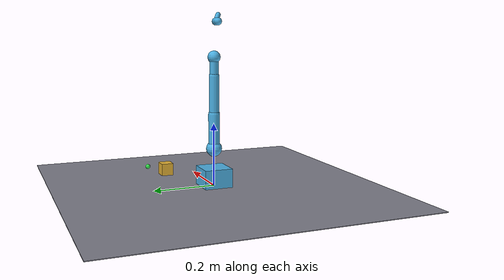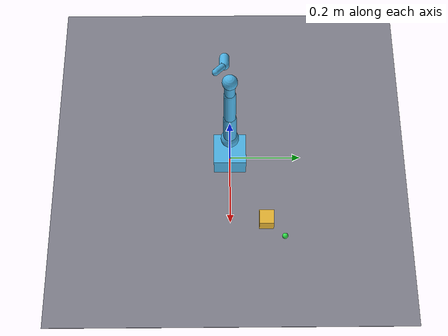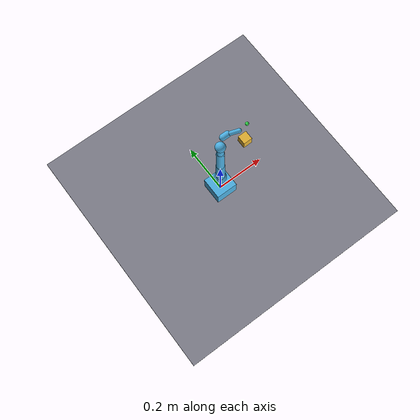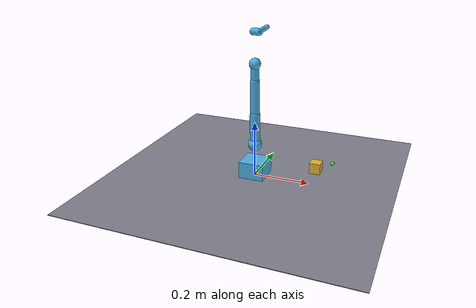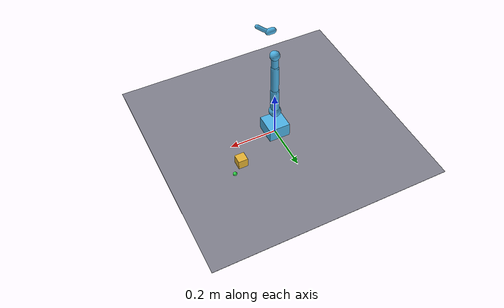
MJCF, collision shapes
<mujoco model="genkiarm_calibrated_push">
  <compiler angle="radian" meshdir="genkiarm/meshes" autolimits="true"/>
  <option gravity="0 0 -9.81" timestep="0.005" integrator="implicitfast"/>

  <asset>
    <mesh name="cad_base" file="AA.stl" scale="0.001 0.001 0.001"/>
    <mesh name="cad_j1" file="BB.stl" scale="0.001 0.001 0.001"/>
    <mesh name="cad_j2" file="CC.stl" scale="0.001 0.001 0.001"/>
    <mesh name="cad_j3" file="DD.stl" scale="0.001 0.001 0.001"/>
    <mesh name="cad_j4" file="EE.stl" scale="0.001 0.001 0.001"/>
    <mesh name="cad_j5" file="FF.stl" scale="0.001 0.001 0.001"/>
    <mesh name="cad_tool" file="GG.stl" scale="0.001 0.001 0.001"/>
  </asset>

  <default>
    <joint type="hinge" limited="true" damping="0.1" armature="0.01"/>
    <motor ctrllimited="true" ctrlrange="-1.5 1.5"
           forcelimited="true" forcerange="-1 1"/>
    <default class="visual">
      <geom type="mesh" contype="0" conaffinity="0"
            group="2" rgba="0.72 0.76 0.80 1"/>
    </default>
    <default class="collision">
      <geom contype="1" conaffinity="1" group="3"
            rgba="0.3 0.7 0.9 0.18"/>
    </default>
  </default>

  <worldbody>
    <light pos="0 -1 1.5" dir="0 1 -1" diffuse="0.8 0.8 0.8"/>
    <body name="table" pos="0 0 0">
      <geom name="table_geom" type="box" size="0.5 0.5 0.001"
            pos="0 0 -0.001" rgba="0.5 0.5 0.55 1"
            contype="1" conaffinity="1" friction="0.4 0.05 0.05"/>
    </body>
    <body name="block" pos="0.20 0.10 0.02">
      <joint name="block_x" type="slide" axis="1 0 0"
             range="-0.5 0.5" damping="0.5"/>
      <joint name="block_y" type="slide" axis="0 1 0"
             range="-0.5 0.5" damping="0.5"/>
      <geom name="block_geom" type="box" size="0.02 0.02 0.02" mass="0.06"
            rgba="0.9 0.7 0.2 1" contype="1" conaffinity="1"
            friction="0.4 0.05 0.05"/>
    </body>

    <body name="base">
      <geom name="base_visual" class="visual" mesh="cad_base"
            pos="0.01274 0 0.020"/>
      <geom name="base_collision" class="collision" type="box"
            size="0.045 0.045 0.030" pos="0 0 0.030" mass="0.10"/>
      <body name="link1" pos="0 0 0.120">
        <joint name="j1" axis="0 0 1" range="-1.4835 1.4835"/>
        <geom name="link1_visual" class="visual" mesh="cad_j1"
              pos="0.01274 0 -0.100"/>
        <geom name="link1_collision" class="collision" type="sphere"
              size="0.025" mass="0.08"/>
        <body name="link2">
          <joint name="j2" axis="0 1 0" range="-1.4835 1.4835"/>
          <geom name="link2_visual" class="visual" mesh="cad_j2"
                pos="0.01274 0 -0.100"/>
          <geom name="link2_collision" class="collision" type="capsule"
                fromto="0 0 0 0 0 0.110" size="0.018" mass="0.08"/>
          <body name="link3" pos="0 0 0.110">
            <joint name="j3" axis="0 1 0" range="-1.6057 1.6057"/>
            <geom name="link3_visual" class="visual" mesh="cad_j3"
                  pos="0.01274 0 -0.210"/>
            <geom name="link3_collision" class="collision" type="capsule"
                  fromto="0 0 0 0 0 0.120" size="0.016" mass="0.08"/>
            <body name="link4" pos="0 0 0.120">
              <joint name="j4" axis="0 1 0" range="-1.6406 1.6057"/>
              <geom name="link4_visual" class="visual" mesh="cad_j4"
                    pos="0.01274 0 -0.330"/>
              <geom name="link4_collision" class="collision" type="capsule"
                    fromto="0 0 0 0 0 0.060" size="0.014" mass="0.06"/>
              <body name="link5" pos="0 0 0.060">
                <joint name="j5" axis="0 0 1" range="-1.5708 1.5708"/>
                <geom name="link5_visual" class="visual" mesh="cad_j5"
                      pos="0.01274 0 -0.390"/>
                <geom name="link5_collision" class="collision" type="sphere"
                      size="0.020" mass="0.05"/>
                <body name="tool" pos="0 -0.0132 0.110">
                  <geom name="tool_visual" class="visual" mesh="cad_tool"
                        pos="0.01274 0.0132 -0.500"
                        rgba="0.88 0.36 0.22 1"/>
                  <geom name="tool_collision" class="collision" type="capsule"
                        fromto="0 0 0 0.020 0 0" size="0.012" mass="0.02"
                        friction="0.1 0.02 0.02"/>
                  <!-- CAD-envelope contact proxy; validate against finger measurements. -->
                  <geom name="pusher_collision" class="collision" type="capsule"
                        fromto="0.0200 0 0 0.0537 -0.0210 0.0210" size="0.008"
                        mass="0.001" friction="0.1 0.02 0.02"/>
                  <site name="ee" pos="0.020 0 0" size="0.008"
                        rgba="1 0.2 0.2 1"/>
                </body>
              </body>
            </body>
          </body>
        </body>
      </body>
    </body>

    <body name="goal" pos="0.25 0.15 0.02">
      <geom name="goal_geom" type="sphere" size="0.008"
            rgba="0.2 0.9 0.3 1" contype="0" conaffinity="0"/>
    </body>
    <camera name="eye_to_hand_left" pos="0.62 -0.62 0.56"
            xyaxes="0.72 0.69 0 -0.42 0.44 0.79"/>
    <camera name="eye_to_hand_right" pos="0.62 0.62 0.56"
            xyaxes="-0.72 0.69 0 -0.42 -0.44 0.79"/>
    <camera name="overview" pos="0.80 -1.00 0.82"
            xyaxes="0.8 0.6 0 -0.35 0.47 0.81"/>
  </worldbody>

  <actuator>
    <motor name="m1" joint="j1"/>
    <motor name="m2" joint="j2"/>
    <motor name="m3" joint="j3"/>
    <motor name="m4" joint="j4"/>
    <motor name="m5" joint="j5"/>
  </actuator>
  <sensor>
    <jointpos name="qpos" joint="j1"/>
    <jointpos name="qpos2" joint="j2"/>
    <jointpos name="qpos3" joint="j3"/>
    <jointpos name="qpos4" joint="j4"/>
    <jointpos name="qpos5" joint="j5"/>
    <framepos name="block_pos" objtype="body" objname="block"/>
  </sensor>
</mujoco>
